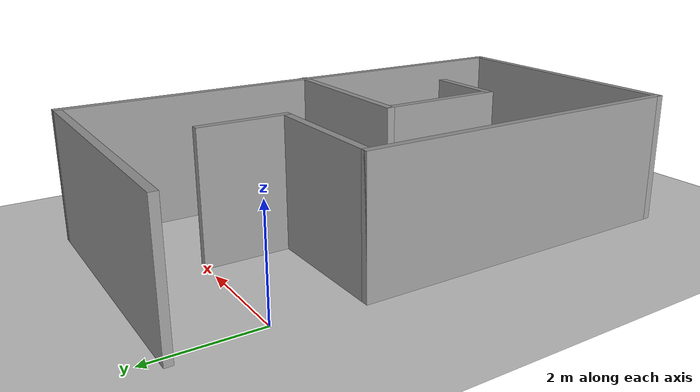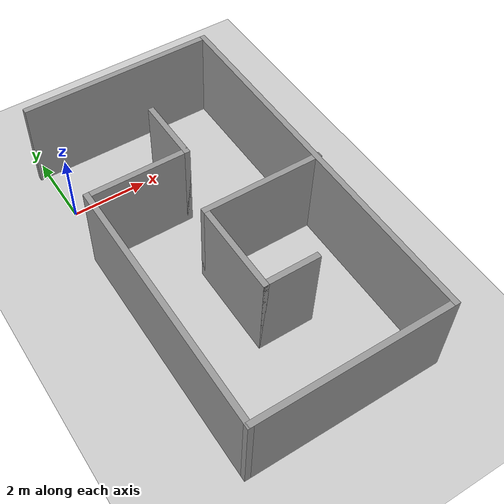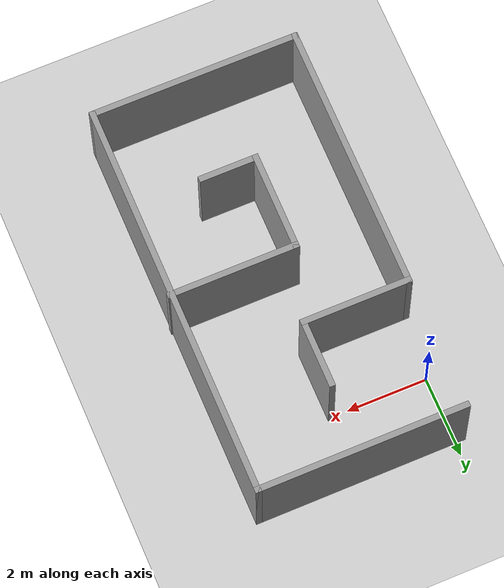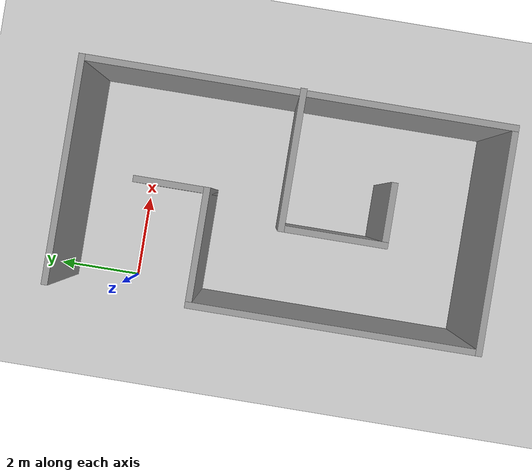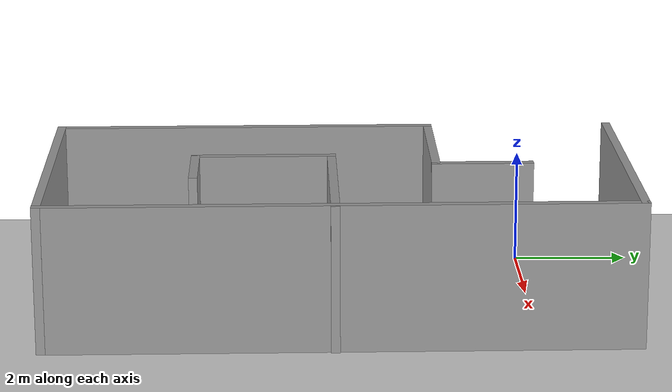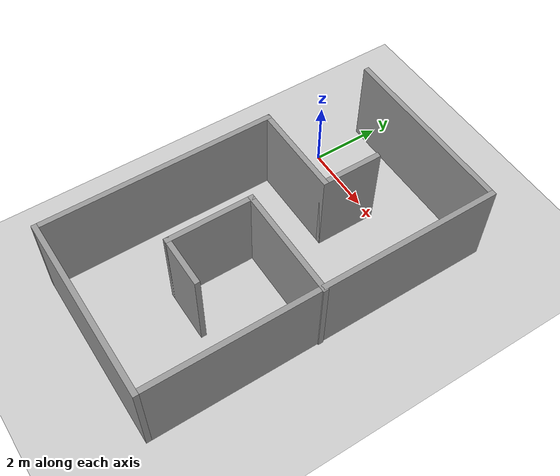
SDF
<sdf version="1.7">
 <world name="default">
  <light name="sun" type="directional">
   <pose>0 0 10 0 -0 0</pose>
   <diffuse>0.8 0.8 0.8 1</diffuse>
   <specular>0.2 0.2 0.2 1</specular>
   <attenuation>
    <range>1000</range>
    <constant>0.9</constant>
    <linear>0.01</linear>
    <quadratic>0.001</quadratic>
   </attenuation>
   <direction>-0.5 0.1 -0.9</direction>
   <spot><inner_angle>0</inner_angle><outer_angle>0</outer_angle><falloff>0</falloff></spot>
  </light>
  <model name="ground_plane">
   <static>1</static>
   <link name="link">
    <collision name="collision">
     <geometry><plane><normal>0 0 1</normal><size>100 100</size></plane></geometry>
     <surface><friction><ode><mu>100</mu><mu2>50</mu2></ode></friction></surface>
    </collision>
    <visual name="visual">
     <cast_shadows>0</cast_shadows>
     <geometry><plane><normal>0 0 1</normal><size>100 100</size></plane></geometry>
     <material>
      <script><uri>file://media/materials/scripts/gazebo.material</uri><name>Gazebo/Grey</name></script>
     </material>
    </visual>
   </link>
  </model>
  <gravity>0 0 -9.8</gravity>
  <magnetic_field>6e-06 2.3e-05 -4.2e-05</magnetic_field>
  <atmosphere type="adiabatic"/>
  <physics type="ode">
   <max_step_size>0.001</max_step_size>
   <real_time_factor>1</real_time_factor>
   <real_time_update_rate>1000</real_time_update_rate>
  </physics>
  <scene><ambient>0.4 0.4 0.4 1</ambient><background>0.7 0.7 0.7 1</background><shadows>1</shadows></scene>
  <spherical_coordinates>
   <surface_model>EARTH_WGS84</surface_model>
   <latitude_deg>0</latitude_deg>
   <longitude_deg>0</longitude_deg>
   <elevation>0</elevation>
   <heading_deg>0</heading_deg>
  </spherical_coordinates>
  <model name="simple2">
   <pose>2.39419 -3.30445 0 0 -0 0</pose>
   <link name="Wall_11">
    <collision name="Wall_11_Collision">
     <geometry><box><size>3.25 0.15 2.5</size></box></geometry>
     <pose>0 0 1.25 0 -0 0</pose>
    </collision>
    <visual name="Wall_11_Visual">
     <pose>0 0 1.25 0 -0 0</pose>
     <geometry><box><size>3.25 0.15 2.5</size></box></geometry>
     <material>
      <script><uri>file://media/materials/scripts/gazebo.material</uri><name>Gazebo/Grey</name></script>
      <ambient>1 1 1 1</ambient>
     </material>
     <meta><layer>0</layer></meta>
    </visual>
    <pose>1.01733 -0.104201 0 0 -0 3.14159</pose>
   </link>
   <link name="Wall_12">
    <collision name="Wall_12_Collision">
     <geometry><box><size>2.5 0.15 2.5</size></box></geometry>
     <pose>0 0 1.25 0 -0 0</pose>
    </collision>
    <visual name="Wall_12_Visual">
     <pose>0 0 1.25 0 -0 0</pose>
     <geometry><box><size>2.5 0.15 2.5</size></box></geometry>
     <material>
      <script><uri>file://media/materials/scripts/gazebo.material</uri><name>Gazebo/Grey</name></script>
      <ambient>1 1 1 1</ambient>
     </material>
     <meta><layer>0</layer></meta>
    </visual>
    <pose>-0.532674 -1.2792 0 0 -0 -1.5708</pose>
   </link>
   <link name="Wall_13">
    <collision name="Wall_13_Collision">
     <geometry><box><size>1.5 0.15 2.5</size></box></geometry>
     <pose>0 0 1.25 0 -0 0</pose>
    </collision>
    <visual name="Wall_13_Visual">
     <pose>0 0 1.25 0 -0 0</pose>
     <geometry><box><size>1.5 0.15 2.5</size></box></geometry>
     <material>
      <script><uri>file://media/materials/scripts/gazebo.material</uri><name>Gazebo/Grey</name></script>
      <ambient>1 1 1 1</ambient>
     </material>
     <meta><layer>0</layer></meta>
    </visual>
    <pose>0.142326 -2.4542 0 0 -0 0</pose>
   </link>
   <link name="Wall_3">
    <collision name="Wall_3_Collision">
     <geometry><box><size>5.25 0.15 2.5</size></box></geometry>
     <pose>0 0 1.25 0 -0 0</pose>
    </collision>
    <visual name="Wall_3_Visual">
     <pose>0 0 1.25 0 -0 0</pose>
     <geometry><box><size>5.25 0.15 2.5</size></box></geometry>
     <material>
      <script><uri>file://media/materials/scripts/gazebo.material</uri><name>Gazebo/Grey</name></script>
      <ambient>1 1 1 1</ambient>
     </material>
     <meta><layer>0</layer></meta>
    </visual>
    <pose>-0.017325 4.925 0 0 -0 0</pose>
   </link>
   <link name="Wall_4">
    <collision name="Wall_4_Collision">
     <geometry><box><size>10 0.15 2.5</size></box></geometry>
     <pose>0 0 1.25 0 -0 0</pose>
    </collision>
    <visual name="Wall_4_Visual">
     <pose>0 0 1.25 0 -0 0</pose>
     <geometry><box><size>10 0.15 2.5</size></box></geometry>
     <material>
      <script><uri>file://media/materials/scripts/gazebo.material</uri><name>Gazebo/Grey</name></script>
      <ambient>1 1 1 1</ambient>
     </material>
     <meta><layer>0</layer></meta>
    </visual>
    <pose>2.53267 -0 0 0 -0 -1.5708</pose>
   </link>
   <link name="Wall_5">
    <collision name="Wall_5_Collision">
     <geometry><box><size>5.25 0.15 2.5</size></box></geometry>
     <pose>0 0 1.25 0 -0 0</pose>
    </collision>
    <visual name="Wall_5_Visual">
     <pose>0 0 1.25 0 -0 0</pose>
     <geometry><box><size>5.25 0.15 2.5</size></box></geometry>
     <material>
      <script><uri>file://media/materials/scripts/gazebo.material</uri><name>Gazebo/Grey</name></script>
      <ambient>1 1 1 1</ambient>
     </material>
     <meta><layer>0</layer></meta>
    </visual>
    <pose>-0.017325 -4.925 0 0 -0 3.14159</pose>
   </link>
   <link name="Wall_6">
    <collision name="Wall_6_Collision">
     <geometry><box><size>6.75 0.15 2.5</size></box></geometry>
     <pose>0 0 1.25 0 -0 0</pose>
    </collision>
    <visual name="Wall_6_Visual">
     <pose>0 0 1.25 0 -0 0</pose>
     <geometry><box><size>6.75 0.15 2.5</size></box></geometry>
     <material>
      <script><uri>file://media/materials/scripts/gazebo.material</uri><name>Gazebo/Grey</name></script>
      <ambient>1 1 1 1</ambient>
     </material>
     <meta><layer>0</layer></meta>
    </visual>
    <pose>-2.56732 -1.625 0 0 -0 1.5708</pose>
   </link>
   <link name="Wall_8">
    <collision name="Wall_8_Collision">
     <geometry><box><size>2.75 0.15 2.5</size></box></geometry>
     <pose>0 0 1.25 0 -0 0</pose>
    </collision>
    <visual name="Wall_8_Visual">
     <pose>0 0 1.25 0 -0 0</pose>
     <geometry><box><size>2.75 0.15 2.5</size></box></geometry>
     <material>
      <script><uri>file://media/materials/scripts/gazebo.material</uri><name>Gazebo/Grey</name></script>
      <ambient>1 1 1 1</ambient>
     </material>
     <meta><layer>0</layer></meta>
    </visual>
    <pose>-1.26733 1.675 0 0 -0 0</pose>
   </link>
   <link name="Wall_9">
    <collision name="Wall_9_Collision">
     <geometry><box><size>1.75 0.15 2.5</size></box></geometry>
     <pose>0 0 1.25 0 -0 0</pose>
    </collision>
    <visual name="Wall_9_Visual">
     <pose>0 0 1.25 0 -0 0</pose>
     <geometry><box><size>1.75 0.15 2.5</size></box></geometry>
     <material>
      <script><uri>file://media/materials/scripts/gazebo.material</uri><name>Gazebo/Grey</name></script>
      <ambient>1 1 1 1</ambient>
     </material>
     <meta><layer>0</layer></meta>
    </visual>
    <pose>0.032675 2.475 0 0 -0 1.5708</pose>
   </link>
   <static>1</static>
  </model>
 </world>
</sdf>
